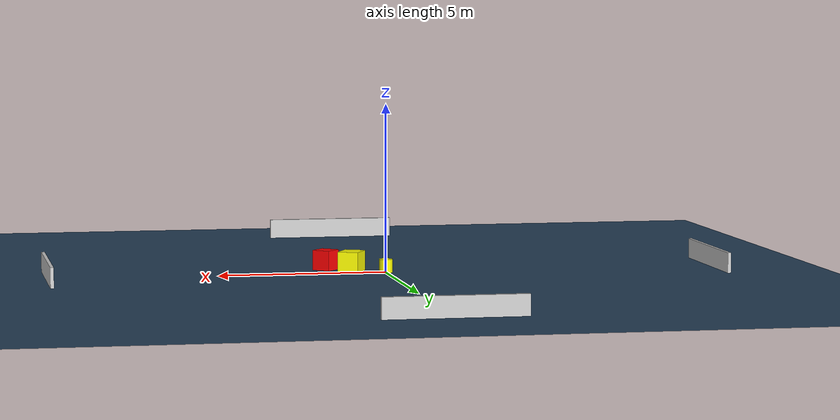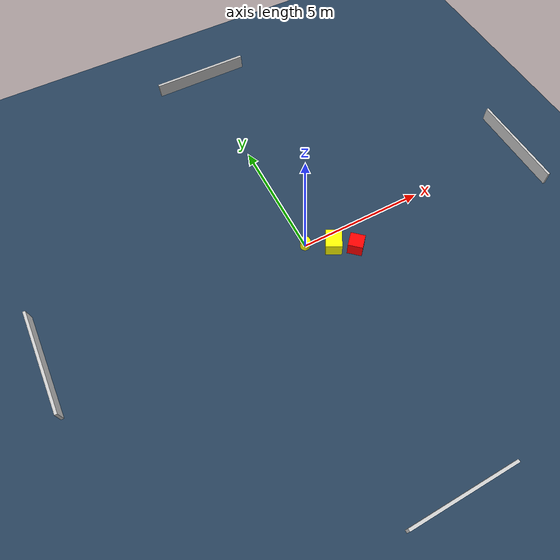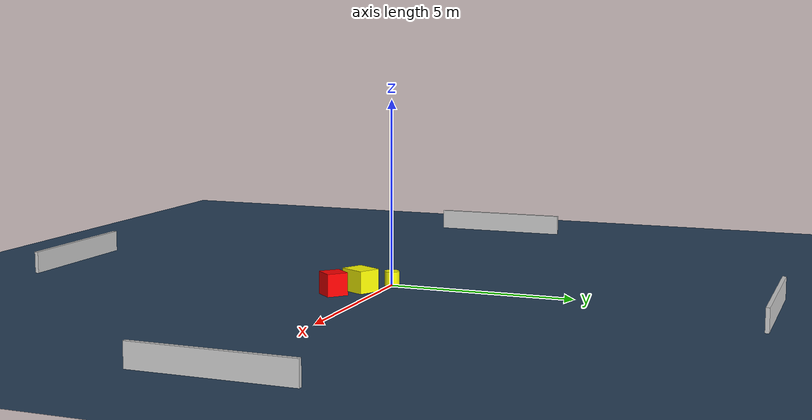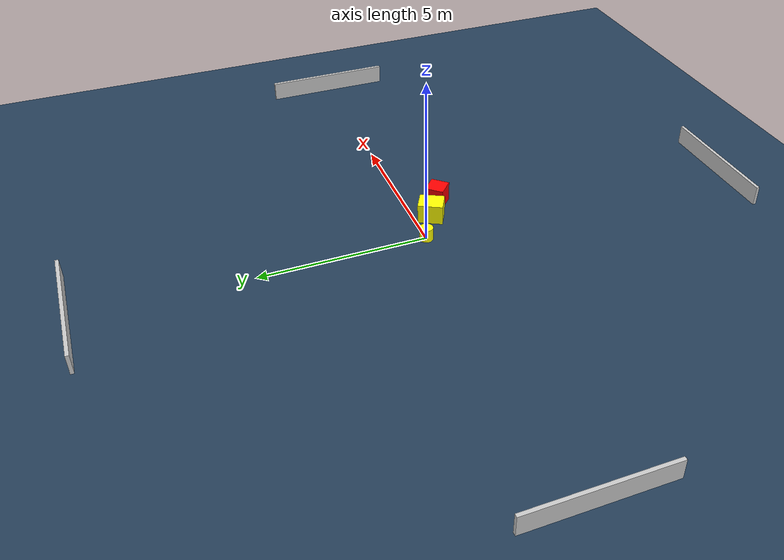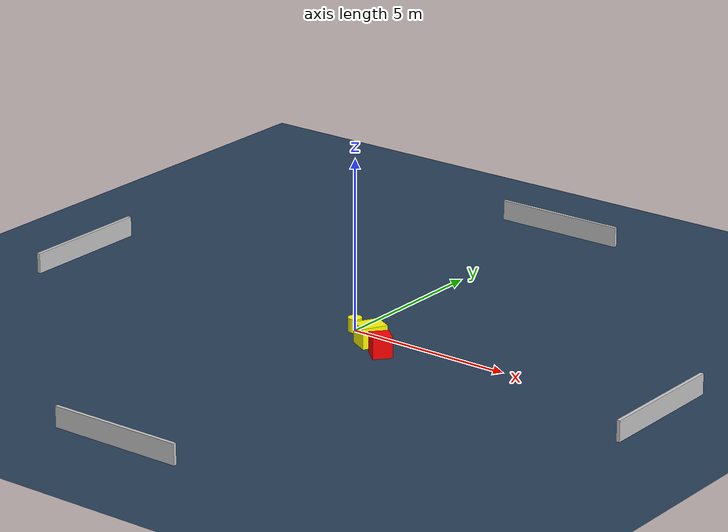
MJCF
<?xml version="1.0" ?>
<mujoco model="generated_environment">
  <option timestep="0.01" integrator="RK4" cone="elliptic"/>
  <default>
    <geom density="1"/>
  </default>
  <asset>
    <texture builtin="gradient" height="3072" name="skybox" rgb1="0.3 0.5 0.7" rgb2="0 0 0" type="skybox" width="512"/>
    <texture builtin="checker" height="300" name="groundplane" rgb1="0.2 0.3 0.4" rgb2="0.1 0.2 0.3" type="2d" width="300"/>
    <material name="groundplane" reflectance="0.2" texrepeat="5 5" texture="groundplane"/>
  </asset>
  <worldbody>
    <light dir="0 0 -1" directional="true" pos="0 0 1.5"/>
    <geom condim="3" friction="0.5 0.005 0.001" material="groundplane" name="floor" pos="0 0 0" size="0 0 0.05" type="plane"/>
    <body name="walls">
      <geom name="wall_1" condim="4" pos="-10.0 0.0 0.3" rgba="0.800000011920929 0.800000011920929 0.800000011920929 1.0" size="0.05 2.0 0.3" type="box"/>
      <geom name="wall_2" condim="4" pos="10.0 0.0 0.3" rgba="0.800000011920929 0.800000011920929 0.800000011920929 1.0" size="0.05 2.0 0.3" type="box"/>
      <geom name="wall_3" condim="4" pos="0.0 -10.0 0.3" rgba="0.800000011920929 0.800000011920929 0.800000011920929 1.0" size="2.0 0.05 0.3" type="box"/>
      <geom name="wall_4" condim="4" pos="0.0 10.0 0.3" rgba="0.800000011920929 0.800000011920929 0.800000011920929 1.0" size="2.0 0.05 0.3" type="box"/>
    </body>
    <body name="robot">
      <joint name="joint_x" type="slide" pos="0 0 0" axis="1 0 0"/>
      <joint name="joint_y" type="slide" pos="0 0 0" axis="0 1 0"/>
      <geom name="robot" type="cylinder" pos="0.0 0.0 0.2" size="0.2 0.2 0.0" mass="5.0" friction="1.0 0.005 0.0001" condim="4" rgba="1.0 1.0 0.0 1.0"/>
    </body>
    <body name="obstacle_1_movable">
      <geom name="obstacle_1_movable" condim="4" pos="0.9385066210321301 -0.5211343600115416 0.3" euler="0 0 331.9645062349795" friction="0.0 0.005 0.001" rgba="1.0 1.0 0.0 1.0" size="0.3099449662541238 0.3715057969215796 0.3" type="box" mass="0.1"/>
      <joint type="free"/>
    </body>
    <body name="obstacle_2_static">
      <geom name="obstacle_2_static" condim="4" pos="1.6469048766738197 -0.9960408267950009 0.3" euler="0 0 318.07512731163365" friction="0.0 0.005 0.001" rgba="1.0 0.0 0.0 1.0" size="0.28510232187701584 0.28162817738302454 0.3" type="box"/>
    </body>
  </worldbody>
  <actuator>
    <motor name="actuator_x" joint="joint_x" gear="1" ctrlrange="-1 1"/>
    <motor name="actuator_y" joint="joint_y" gear="1" ctrlrange="-1 1"/>
  </actuator>
</mujoco>
